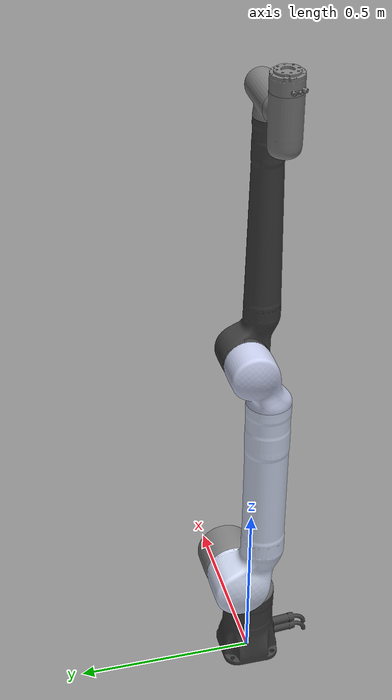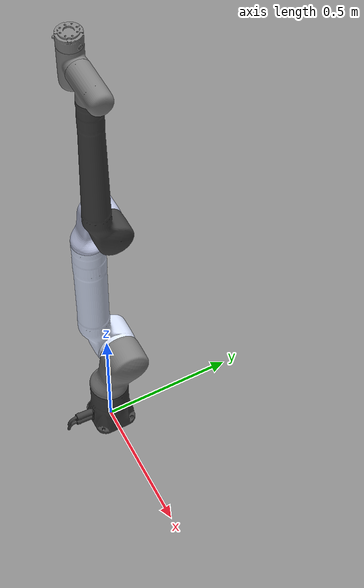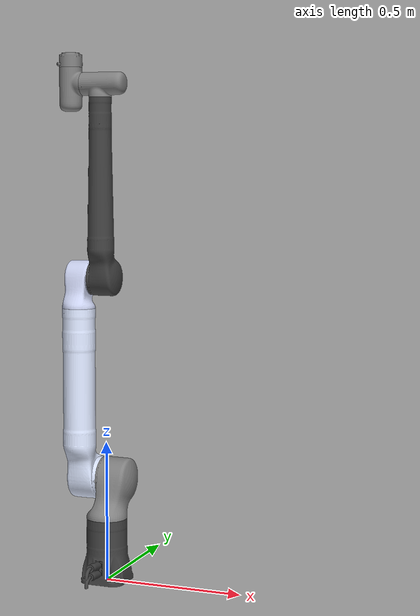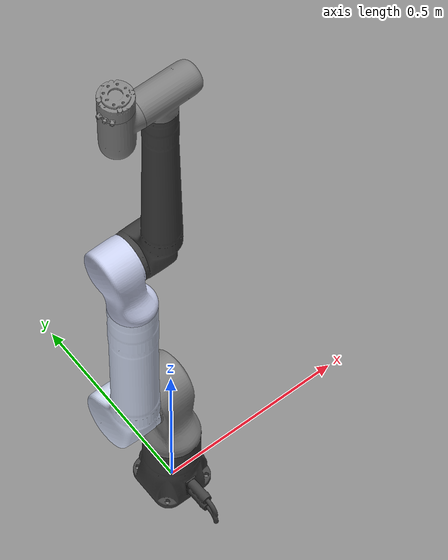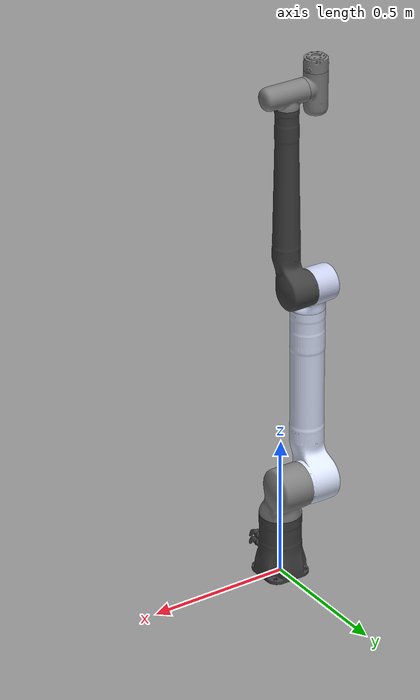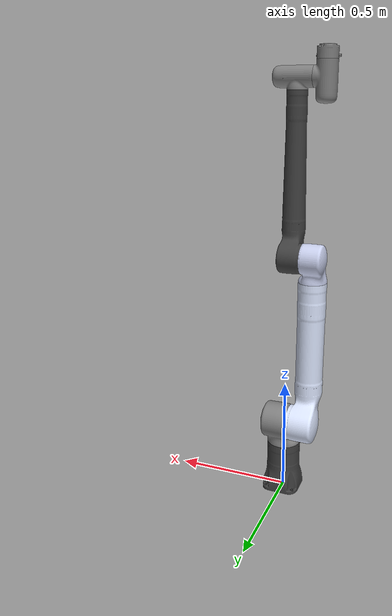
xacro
<?xml version="1.0"?>
<robot name="kr1410" xmlns:xacro="http://wiki.ros.org/xacro">
    <!-- Author: Shivam -->

    <xacro:include filename="$(find pkg_kassowa_robot)/urdf/kr1410_model.xacro"/>
    <xacro:include filename="$(find pkg_kassowa_robot)/urdf/kr1410_transmissions.xacro"/>
    <xacro:include filename="$(find pkg_kassowa_robot)/urdf/kr1410_gazebo.xacro"/>

    <!-- Create a dummy link base_link -->
    <link name="base_link"/>
    <joint name="base_link_joint" type="fixed">
        <parent link="base_link"/>
        <child link="base_link_1"/>
        <origin rpy="0 0 0" xyz="0 0 0"/>
    </joint>
    <!-- Create end effector link -->
    <link name="ee_link"/>
    <joint name="ee_joint" type="fixed">
        <parent link="tool_io"/>
        <child link="ee_link"/>
        <origin rpy="0 0 0" xyz="0 0 0.05"/>
    </joint>
</robot>

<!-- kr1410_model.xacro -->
<!-- |    This document was autogenerated by xacro from kr1410.urdf                    | -->
<!-- |    EDITING THIS FILE BY HAND IS NOT RECOMMENDED                                 | -->

<robot name="KR1410">
  <link name="base_link_1">
    <inertial>
      <origin rpy="0 0 0" xyz="-7.4738E-07 -0.0025261 0.10578"/>
      <mass value="4.1962"/>
      <inertia ixx="0.0097664" ixy="-2.7713E-06" ixz="-6.4429E-08" iyy="0.0097383" iyz="2.8724E-06" izz="0.01208"/>
    </inertial>
    <visual>
      <origin rpy="0 0 0" xyz="0 0 0"/>
      <geometry>
        <mesh filename="package://pkg_kassowa_robot/meshes/visual/base_link_1.dae"/>
      </geometry>
      <material name="">
        <color rgba="0.25098 0.25098 0.25098 1"/>
      </material>
    </visual>
    <collision>
      <origin rpy="0 0 0" xyz="0 0 0"/>
      <geometry>
        <mesh filename="package://pkg_kassowa_robot/meshes/collision/base_link_1.STL"/>
      </geometry>
    </collision>
  </link>
  <link name="link_1">
    <inertial>
      <origin rpy="0 0 0" xyz="0.012459 0.043509 0.10073"/>
      <mass value="3.0192"/>
      <inertia ixx="0.015663" ixy="-0.00040133" ixz="-0.00064388" iyy="0.012554" iyz="-0.0035217" izz="0.0094056"/>
    </inertial>
    <visual>
      <origin rpy="0 0 0" xyz="0 0 0"/>
      <geometry>
        <mesh filename="package://pkg_kassowa_robot/meshes/visual/link_1.dae"/>
      </geometry>
      <material name="">
        <color rgba="0.50196 0.50196 0.50196 1"/>
      </material>
    </visual>
    <collision>
      <origin rpy="0 0 0" xyz="0 0 0"/>
      <geometry>
        <mesh filename="package://pkg_kassowa_robot/meshes/collision/link_1.STL"/>
      </geometry>
    </collision>
  </link>
  <joint name="joint_1" type="revolute">
    <origin rpy="0 0 0" xyz="0 0 0.2272"/>
    <parent link="base_link_1"/>
    <child link="link_1"/>
    <axis xyz="0 0 1"/>
    <limit effort="150.0" lower="-3.1416" upper="3.1416" velocity="3.927"/>
    <dynamics damping="0" friction="0"/>
  </joint>
  <link name="link_2">
    <inertial>
      <origin rpy="0 0 0" xyz="-0.044962 -0.2486 0.062961"/>
      <mass value="8.0381"/>
      <inertia ixx="0.045397" ixy="-0.0027682" ixz="9.7935E-05" iyy="0.016757" iyz="0.00018387" izz="0.048264"/>
    </inertial>
    <visual>
      <origin rpy="0 0 0" xyz="0 0 0"/>
      <geometry>
        <mesh filename="package://pkg_kassowa_robot/meshes/visual/link_2.dae"/>
      </geometry>
      <material name="">
        <color rgba="0.86667 0.90588 1 1"/>
      </material>
    </visual>
    <collision>
      <origin rpy="0 0 0" xyz="0 0 0"/>
      <geometry>
        <mesh filename="package://pkg_kassowa_robot/meshes/collision/link_2.STL"/>
      </geometry>
    </collision>
  </link>
  <joint name="joint_2" type="revolute">
    <origin rpy="-1.5708 0 1.5708" xyz="-0.0405 0.062 0.13"/>
    <parent link="link_1"/>
    <child link="link_2"/>
    <axis xyz="0 0 -1"/>
    <limit effort="150.0" lower="-1.2217" upper="3.1416" velocity="3.927"/>
    <dynamics damping="0" friction="0"/>
  </joint>
  <link name="link_3">
    <inertial>
      <origin rpy="0 0 0" xyz="-0.010057 0.034551 0.080854"/>
      <mass value="1.5966"/>
      <inertia ixx="0.0054385" ixy="0.00013345" ixz="0.00023101" iyy="0.0043549" iyz="-0.0012411" izz="0.0032789"/>
    </inertial>
    <visual>
      <origin rpy="0 0 0" xyz="0 0 0"/>
      <geometry>
        <mesh filename="package://pkg_kassowa_robot/meshes/visual/link_3.dae"/>
      </geometry>
      <material name="">
        <color rgba="0.79216 0.81961 0.93333 1"/>
      </material>
    </visual>
    <collision>
      <origin rpy="0 0 0" xyz="0 0 0"/>
      <geometry>
        <mesh filename="package://pkg_kassowa_robot/meshes/collision/link_3.STL"/>
      </geometry>
    </collision>
  </link>
  <joint name="joint_3" type="revolute">
    <origin rpy="1.5708 1.5708 0" xyz="-0.062 -0.6175 0.0647"/>
    <parent link="link_2"/>
    <child link="link_3"/>
    <axis xyz="0 0 1"/>
    <limit effort="150.0" lower="-3.1416" upper="3.1416" velocity="3.927"/>
    <dynamics damping="0" friction="0"/>
  </joint>
  <link name="link_4">
    <inertial>
      <origin rpy="0 0 0" xyz="-0.036947 -0.23777 -0.051725"/>
      <mass value="4.4818"/>
      <inertia ixx="0.036251" ixy="-0.00092868" ixz="-2.0678E-05" iyy="0.0053736" iyz="-4.2282E-05" izz="0.037294"/>
    </inertial>
    <visual>
      <origin rpy="0 0 0" xyz="0 0 0"/>
      <geometry>
        <mesh filename="package://pkg_kassowa_robot/meshes/visual/link_4.dae"/>
      </geometry>
      <material name="">
        <color rgba="0.25098 0.25098 0.25098 1"/>
      </material>
    </visual>
    <collision>
      <origin rpy="0 0 0" xyz="0 0 0"/>
      <geometry>
        <mesh filename="package://pkg_kassowa_robot/meshes/collision/link_4.STL"/>
      </geometry>
    </collision>
  </link>
  <joint name="joint_4" type="revolute">
    <origin rpy="-1.5708 0 1.5708" xyz="0.0325 0.05 0.105"/>
    <parent link="link_3"/>
    <child link="link_4"/>
    <axis xyz="0 0 1"/>
    <limit effort="150.0" lower="-1.2217" upper="3.1416" velocity="3.927"/>
    <dynamics damping="0" friction="0"/>
  </joint>
  <link name="link_5">
    <inertial>
      <origin rpy="0 0 0" xyz="0.015982 4.9455E-08 0.043633"/>
      <mass value="0.76365"/>
      <inertia ixx="0.00066763" ixy="-2.6599E-09" ixz="8.4155E-06" iyy="0.00080379" iyz="-9.3021E-10" izz="0.00075782"/>
    </inertial>
    <visual>
      <origin rpy="0 0 0" xyz="0 0 0"/>
      <geometry>
        <mesh filename="package://pkg_kassowa_robot/meshes/visual/link_5.dae"/>
      </geometry>
      <material name="">
        <color rgba="0.50196 0.50196 0.50196 1"/>
      </material>
    </visual>
    <collision>
      <origin rpy="0 0 0" xyz="0 0 0"/>
      <geometry>
        <mesh filename="package://pkg_kassowa_robot/meshes/collision/link_5.STL"/>
      </geometry>
    </collision>
  </link>
  <joint name="joint_5" type="revolute">
    <origin rpy="1.5708 1.5708 0" xyz="-0.05 -0.631 -0.0532"/>
    <parent link="link_4"/>
    <child link="link_5"/>
    <axis xyz="0 0 1"/>
    <limit effort="28.0" lower="-3.1416" upper="3.1416" velocity="3.927"/>
    <dynamics damping="0" friction="0"/>
  </joint>
  <link name="link_6">
    <inertial>
      <origin rpy="0 0 0" xyz="-4.9555E-08 -0.016138 -0.043627"/>
      <mass value="0.76211"/>
      <inertia ixx="0.00080256" ixy="-2.6599E-09" ixz="-9.3021E-10" iyy="0.00066523" iyz="8.4155E-06" izz="0.00075659"/>
    </inertial>
    <visual>
      <origin rpy="0 0 0" xyz="0 0 0"/>
      <geometry>
        <mesh filename="package://pkg_kassowa_robot/meshes/visual/link_6.dae"/>
      </geometry>
      <material name="">
        <color rgba="0.50196 0.50196 0.50196 1"/>
      </material>
    </visual>
    <collision>
      <origin rpy="0 0 0" xyz="0 0 0"/>
      <geometry>
        <mesh filename="package://pkg_kassowa_robot/meshes/collision/link_6.STL"/>
      </geometry>
    </collision>
  </link>
  <joint name="joint_6" type="revolute">
    <origin rpy="1.5708 0 1.5708" xyz="-0.0645 0 0.0465"/>
    <parent link="link_5"/>
    <child link="link_6"/>
    <axis xyz="0 0 -1"/>
    <limit effort="28.0" lower="-3.1416" upper="3.1416" velocity="3.927"/>
    <dynamics damping="0" friction="0"/>
  </joint>
  <link name="tool_io">
    <inertial>
      <origin rpy="0 0 0" xyz="-0.00026943 -0.00014925 0.028118"/>
      <mass value="0.22852"/>
      <inertia ixx="0.00010445" ixy="9.8149E-07" ixz="-9.1736E-08" iyy="0.00010267" iyz="-1.6431E-08" izz="0.00017436"/>
    </inertial>
    <visual>
      <origin rpy="0 0 0" xyz="0 0 0"/>
      <geometry>
        <mesh filename="package://pkg_kassowa_robot/meshes/visual/tool_io.dae"/>
      </geometry>
      <material name="">
        <color rgba="0.50196 0.50196 0.50196 1"/>
      </material>
    </visual>
    <collision>
      <origin rpy="0 0 0" xyz="0 0 0"/>
      <geometry>
        <mesh filename="package://pkg_kassowa_robot/meshes/collision/tool_io.STL"/>
      </geometry>
    </collision>
  </link>
  <joint name="joint_tool_io" type="revolute">
    <origin rpy="1.5708 -1.5708 3.14" xyz="0 0.053 -0.0465"/>
    <parent link="link_6"/>
    <child link="tool_io"/>
    <axis xyz="0 0 1"/>
    <limit effort="28.0" lower="-3.1416" upper="3.1416" velocity="3.927"/>
    <dynamics damping="0" friction="0"/>
  </joint>
</robot>

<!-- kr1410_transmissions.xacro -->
<robot xmlns:xacro="http://wiki.ros.org/xacro">
    <!-- Author: Shivam -->

    <!-- Macro for joint transmission -->
    <xacro:macro name="joint_transmission" params="joint hw_interface">
        <transmission name="${joint}_trans">
            <type>transmission_interface/SimpleTransmission</type>
            <joint name="${joint}">
                <hardwareInterface>${hw_interface}</hardwareInterface>
            </joint>
            <actuator name="${joint}_motor">
                <mechanicalReduction>1.0</mechanicalReduction>
            </actuator>
        </transmission>
    </xacro:macro>

    <!-- Type of transmission used -->
    <xacro:property name="transmission_hw_interface" value="hardware_interface/PositionJointInterface" />

    <!-- Adding transmission to joints of KR1410 robot -->
    <xacro:joint_transmission joint="joint_1" hw_interface="${transmission_hw_interface}" />
    <xacro:joint_transmission joint="joint_2" hw_interface="${transmission_hw_interface}" />
    <xacro:joint_transmission joint="joint_3" hw_interface="${transmission_hw_interface}" />
    <xacro:joint_transmission joint="joint_4" hw_interface="${transmission_hw_interface}" />
    <xacro:joint_transmission joint="joint_5" hw_interface="${transmission_hw_interface}" />
    <xacro:joint_transmission joint="joint_6" hw_interface="${transmission_hw_interface}" />
    <xacro:joint_transmission joint="joint_tool_io" hw_interface="${transmission_hw_interface}" />
</robot>

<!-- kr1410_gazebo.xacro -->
<robot xmlns:xacro="http://www.ros.org/wiki/xacro">
    <!-- Author: Shivam -->

    <xacro:macro name="self_collision" params="link">
    <!-- Configure self collision properties per link -->
        <gazebo reference="${link}">
            <selfCollide>true</selfCollide>
        </gazebo>
    </xacro:macro>

    <xacro:self_collision link="base_link_1"/>
    <xacro:self_collision link="link_1"/>
    <xacro:self_collision link="link_2"/>
    <xacro:self_collision link="link_3"/>
    <xacro:self_collision link="link_4"/>
    <xacro:self_collision link="link_5"/>
    <xacro:self_collision link="link_6"/>
    <xacro:self_collision link="tool_io"/>

    <gazebo>
        <plugin name="ros_control" filename="libgazebo_ros_control.so">
        </plugin>
    </gazebo>

    <!-- Define the kr1410 robot position and orientation in the world coordinate system -->
    <link name="world"/>
    <joint name="world_joint" type="fixed">
        <parent link="world"/>
        <child link="base_link"/>
        <origin rpy="0.0 0.0 0.0" xyz="0.0 0.0 0.0"/>
    </joint>
</robot>
